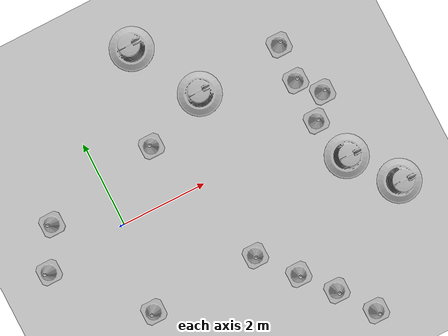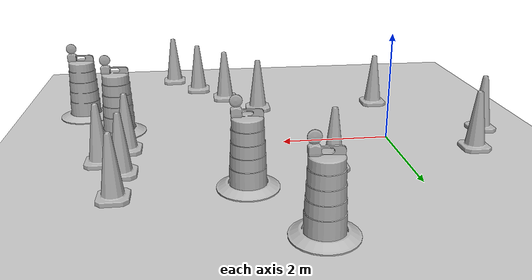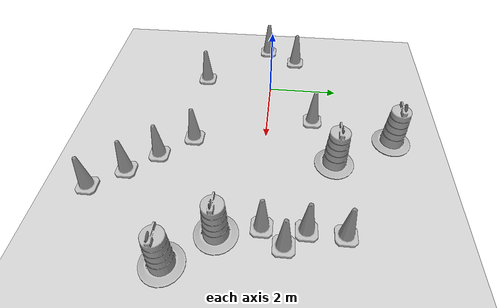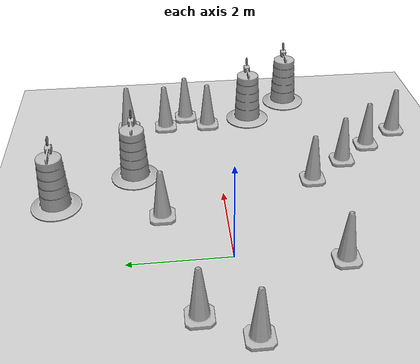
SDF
<sdf version="1.7">
 <world name="default">
  <light name="sun" type="directional">
   <pose>0 0 10 0 -0 0</pose>
   <diffuse>0.8 0.8 0.8 1</diffuse>
   <specular>0.2 0.2 0.2 1</specular>
   <attenuation>
    <range>1000</range>
    <constant>0.9</constant>
    <linear>0.01</linear>
    <quadratic>0.001</quadratic>
   </attenuation>
   <direction>-0.5 0.1 -0.9</direction>
   <spot><inner_angle>0</inner_angle><outer_angle>0</outer_angle><falloff>0</falloff></spot>
  </light>
  <model name="ground_plane">
   <static>1</static>
   <link name="link">
    <collision name="collision">
     <geometry><plane><normal>0 0 1</normal><size>100 100</size></plane></geometry>
     <surface><friction><ode><mu>100</mu><mu2>50</mu2></ode></friction></surface>
    </collision>
    <visual name="visual">
     <cast_shadows>0</cast_shadows>
     <geometry><plane><normal>0 0 1</normal><size>100 100</size></plane></geometry>
     <material>
      <script><uri>file://media/materials/scripts/gazebo.material</uri><name>Gazebo/Grey</name></script>
     </material>
    </visual>
   </link>
  </model>
  <gravity>0 0 -9.8</gravity>
  <magnetic_field>6e-06 2.3e-05 -4.2e-05</magnetic_field>
  <atmosphere type="adiabatic"/>
  <physics type="ode">
   <max_step_size>0.001</max_step_size>
   <real_time_factor>1</real_time_factor>
   <real_time_update_rate>1000</real_time_update_rate>
  </physics>
  <scene><ambient>0.4 0.4 0.4 1</ambient><background>0.7 0.7 0.7 1</background><shadows>1</shadows></scene>
  <audio><device>default</device></audio>
  <spherical_coordinates>
   <surface_model>EARTH_WGS84</surface_model>
   <latitude_deg>0</latitude_deg>
   <longitude_deg>0</longitude_deg>
   <elevation>0</elevation>
   <heading_deg>0</heading_deg>
  </spherical_coordinates>
  <model name="Construction Cone">
   <link name="link">
    <collision name="collision">
     <geometry>
      <mesh><scale>10 10 10</scale><uri>model://construction_cone/meshes/construction_cone.dae</uri></mesh>
     </geometry>
    </collision>
    <visual name="visual">
     <geometry>
      <mesh><scale>10 10 10</scale><uri>model://construction_cone/meshes/construction_cone.dae</uri></mesh>
     </geometry>
    </visual>
    <inertial>
     <inertia><ixx>1</ixx><ixy>0</ixy><ixz>0</ixz><iyy>1</iyy><iyz>0</iyz><izz>1</izz></inertia>
     <mass>1</mass>
    </inertial>
   </link>
   <pose>-1.4351 0.744805 -0 0 -0 0</pose>
  </model>
  <model name="Construction Barrel">
   <link name="link">
    <inertial>
     <pose>0 0 0.4 0 -0 0</pose>
     <mass>500</mass>
     <inertia><ixx>51.2096</ixx><iyy>51.2096</iyy><izz>25</izz><ixy>0</ixy><ixz>0</ixz><iyz>0</iyz></inertia>
    </inertial>
    <collision name="collision">
     <geometry><mesh><uri>model://construction_barrel/meshes/construction_barrel.dae</uri></mesh></geometry>
    </collision>
    <visual name="visual">
     <geometry><mesh><uri>model://construction_barrel/meshes/construction_barrel.dae</uri></mesh></geometry>
    </visual>
   </link>
   <pose>1.93281 3.41377 -1e-06 2e-06 -1e-06 -2.7e-05</pose>
  </model>
  <model name="Construction Barrel_0">
   <link name="link">
    <inertial>
     <pose>0 0 0.4 0 -0 0</pose>
     <mass>500</mass>
     <inertia><ixx>51.2096</ixx><iyy>51.2096</iyy><izz>25</izz><ixy>0</ixy><ixz>0</ixz><iyz>0</iyz></inertia>
    </inertial>
    <collision name="collision">
     <geometry><mesh><uri>model://construction_barrel/meshes/construction_barrel.dae</uri></mesh></geometry>
    </collision>
    <visual name="visual">
     <geometry><mesh><uri>model://construction_barrel/meshes/construction_barrel.dae</uri></mesh></geometry>
    </visual>
   </link>
   <pose>5.10333 -0.908395 -0 0 0 -2.7e-05</pose>
  </model>
  <model name="Construction Cone_0">
   <link name="link">
    <collision name="collision">
     <geometry>
      <mesh><scale>10 10 10</scale><uri>model://construction_cone/meshes/construction_cone.dae</uri></mesh>
     </geometry>
    </collision>
    <visual name="visual">
     <geometry>
      <mesh><scale>10 10 10</scale><uri>model://construction_cone/meshes/construction_cone.dae</uri></mesh>
     </geometry>
    </visual>
    <inertial>
     <inertia><ixx>1</ixx><ixy>0</ixy><ixz>0</ixz><iyy>1</iyy><iyz>0</iyz><izz>1</izz></inertia>
     <mass>1</mass>
    </inertial>
   </link>
   <pose>1.33339 1.27931 -4e-06 4e-06 -1e-06 0</pose>
  </model>
  <model name="Construction Cone_1">
   <link name="link">
    <collision name="collision">
     <geometry>
      <mesh><scale>10 10 10</scale><uri>model://construction_cone/meshes/construction_cone.dae</uri></mesh>
     </geometry>
    </collision>
    <visual name="visual">
     <geometry>
      <mesh><scale>10 10 10</scale><uri>model://construction_cone/meshes/construction_cone.dae</uri></mesh>
     </geometry>
    </visual>
    <inertial>
     <inertia><ixx>1</ixx><ixy>0</ixy><ixz>0</ixz><iyy>1</iyy><iyz>0</iyz><izz>1</izz></inertia>
     <mass>1</mass>
    </inertial>
   </link>
   <pose>-1.98079 -0.179724 -1e-05 -0 -0 -0</pose>
  </model>
  <model name="Construction Cone_2">
   <link name="link">
    <collision name="collision">
     <geometry>
      <mesh><scale>10 10 10</scale><uri>model://construction_cone/meshes/construction_cone.dae</uri></mesh>
     </geometry>
    </collision>
    <visual name="visual">
     <geometry>
      <mesh><scale>10 10 10</scale><uri>model://construction_cone/meshes/construction_cone.dae</uri></mesh>
     </geometry>
    </visual>
    <inertial>
     <inertia><ixx>1</ixx><ixy>0</ixy><ixz>0</ixz><iyy>1</iyy><iyz>0</iyz><izz>1</izz></inertia>
     <mass>1</mass>
    </inertial>
   </link>
   <pose>-0.310444 -2.02686 -0 0 -1e-06 0</pose>
  </model>
  <model name="Construction Cone_3">
   <link name="link">
    <collision name="collision">
     <geometry>
      <mesh><scale>10 10 10</scale><uri>model://construction_cone/meshes/construction_cone.dae</uri></mesh>
     </geometry>
    </collision>
    <visual name="visual">
     <geometry>
      <mesh><scale>10 10 10</scale><uri>model://construction_cone/meshes/construction_cone.dae</uri></mesh>
     </geometry>
    </visual>
    <inertial>
     <inertia><ixx>1</ixx><ixy>0</ixy><ixz>0</ixz><iyy>1</iyy><iyz>0</iyz><izz>1</izz></inertia>
     <mass>1</mass>
    </inertial>
   </link>
   <pose>2.27566 -1.95054 -0 0 -0 0</pose>
  </model>
  <model name="Construction Cone_4">
   <link name="link">
    <collision name="collision">
     <geometry>
      <mesh><scale>10 10 10</scale><uri>model://construction_cone/meshes/construction_cone.dae</uri></mesh>
     </geometry>
    </collision>
    <visual name="visual">
     <geometry>
      <mesh><scale>10 10 10</scale><uri>model://construction_cone/meshes/construction_cone.dae</uri></mesh>
     </geometry>
    </visual>
    <inertial>
     <inertia><ixx>1</ixx><ixy>0</ixy><ixz>0</ixz><iyy>1</iyy><iyz>0</iyz><izz>1</izz></inertia>
     <mass>1</mass>
    </inertial>
   </link>
   <pose>2.94461 -2.76379 -0 0 -0 0</pose>
  </model>
  <model name="Construction Cone_5">
   <link name="link">
    <collision name="collision">
     <geometry>
      <mesh><scale>10 10 10</scale><uri>model://construction_cone/meshes/construction_cone.dae</uri></mesh>
     </geometry>
    </collision>
    <visual name="visual">
     <geometry>
      <mesh><scale>10 10 10</scale><uri>model://construction_cone/meshes/construction_cone.dae</uri></mesh>
     </geometry>
    </visual>
    <inertial>
     <inertia><ixx>1</ixx><ixy>0</ixy><ixz>0</ixz><iyy>1</iyy><iyz>0</iyz><izz>1</izz></inertia>
     <mass>1</mass>
    </inertial>
   </link>
   <pose>3.5349 -3.47213 -0 0 -1e-06 0</pose>
  </model>
  <model name="Construction Cone_6">
   <link name="link">
    <collision name="collision">
     <geometry>
      <mesh><scale>10 10 10</scale><uri>model://construction_cone/meshes/construction_cone.dae</uri></mesh>
     </geometry>
    </collision>
    <visual name="visual">
     <geometry>
      <mesh><scale>10 10 10</scale><uri>model://construction_cone/meshes/construction_cone.dae</uri></mesh>
     </geometry>
    </visual>
    <inertial>
     <inertia><ixx>1</ixx><ixy>0</ixy><ixz>0</ixz><iyy>1</iyy><iyz>0</iyz><izz>1</izz></inertia>
     <mass>1</mass>
    </inertial>
   </link>
   <pose>4.11196 -4.27227 0 -0 -0 -0</pose>
  </model>
  <model name="Construction Barrel_1">
   <link name="link">
    <inertial>
     <pose>0 0 0.4 0 -0 0</pose>
     <mass>500</mass>
     <inertia><ixx>51.2096</ixx><iyy>51.2096</iyy><izz>25</izz><ixy>0</ixy><ixz>0</ixz><iyz>0</iyz></inertia>
    </inertial>
    <collision name="collision">
     <geometry><mesh><uri>model://construction_barrel/meshes/construction_barrel.dae</uri></mesh></geometry>
    </collision>
    <visual name="visual">
     <geometry><mesh><uri>model://construction_barrel/meshes/construction_barrel.dae</uri></mesh></geometry>
    </visual>
   </link>
   <pose>5.89585 -1.93746 0 0 -0 -2.6e-05</pose>
  </model>
  <model name="Construction Cone_7">
   <link name="link">
    <collision name="collision">
     <geometry>
      <mesh><scale>10 10 10</scale><uri>model://construction_cone/meshes/construction_cone.dae</uri></mesh>
     </geometry>
    </collision>
    <visual name="visual">
     <geometry>
      <mesh><scale>10 10 10</scale><uri>model://construction_cone/meshes/construction_cone.dae</uri></mesh>
     </geometry>
    </visual>
    <inertial>
     <inertia><ixx>1</ixx><ixy>0</ixy><ixz>0</ixz><iyy>1</iyy><iyz>0</iyz><izz>1</izz></inertia>
     <mass>1</mass>
    </inertial>
   </link>
   <pose>4.89902 1.98461 -0 0 -1e-06 0</pose>
  </model>
  <model name="Construction Cone_8">
   <link name="link">
    <collision name="collision">
     <geometry>
      <mesh><scale>10 10 10</scale><uri>model://construction_cone/meshes/construction_cone.dae</uri></mesh>
     </geometry>
    </collision>
    <visual name="visual">
     <geometry>
      <mesh><scale>10 10 10</scale><uri>model://construction_cone/meshes/construction_cone.dae</uri></mesh>
     </geometry>
    </visual>
    <inertial>
     <inertia><ixx>1</ixx><ixy>0</ixy><ixz>0</ixz><iyy>1</iyy><iyz>0</iyz><izz>1</izz></inertia>
     <mass>1</mass>
    </inertial>
   </link>
   <pose>4.8597 1.10575 -0 0 -0 0</pose>
  </model>
  <model name="Construction Cone_9">
   <link name="link">
    <collision name="collision">
     <geometry>
      <mesh><scale>10 10 10</scale><uri>model://construction_cone/meshes/construction_cone.dae</uri></mesh>
     </geometry>
    </collision>
    <visual name="visual">
     <geometry>
      <mesh><scale>10 10 10</scale><uri>model://construction_cone/meshes/construction_cone.dae</uri></mesh>
     </geometry>
    </visual>
    <inertial>
     <inertia><ixx>1</ixx><ixy>0</ixy><ixz>0</ixz><iyy>1</iyy><iyz>0</iyz><izz>1</izz></inertia>
     <mass>1</mass>
    </inertial>
   </link>
   <pose>4.8597 0.095739 -0 0 -0 0</pose>
  </model>
  <model name="Construction Cone_10">
   <link name="link">
    <collision name="collision">
     <geometry>
      <mesh><scale>10 10 10</scale><uri>model://construction_cone/meshes/construction_cone.dae</uri></mesh>
     </geometry>
    </collision>
    <visual name="visual">
     <geometry>
      <mesh><scale>10 10 10</scale><uri>model://construction_cone/meshes/construction_cone.dae</uri></mesh>
     </geometry>
    </visual>
    <inertial>
     <inertia><ixx>1</ixx><ixy>0</ixy><ixz>0</ixz><iyy>1</iyy><iyz>0</iyz><izz>1</izz></inertia>
     <mass>1</mass>
    </inertial>
   </link>
   <pose>5.27946 0.607302 -4e-06 4e-06 -1e-06 0</pose>
  </model>
  <model name="Construction Barrel_2">
   <link name="link">
    <inertial>
     <pose>0 0 0.4 0 -0 0</pose>
     <mass>500</mass>
     <inertia><ixx>51.2096</ixx><iyy>51.2096</iyy><izz>25</izz><ixy>0</ixy><ixz>0</ixz><iyz>0</iyz></inertia>
    </inertial>
    <collision name="collision">
     <geometry><mesh><uri>model://construction_barrel/meshes/construction_barrel.dae</uri></mesh></geometry>
    </collision>
    <visual name="visual">
     <geometry><mesh><uri>model://construction_barrel/meshes/construction_barrel.dae</uri></mesh></geometry>
    </visual>
   </link>
   <pose>2.82647 1.82642 -0 0 0 -2e-05</pose>
  </model>
 </world>
</sdf>
